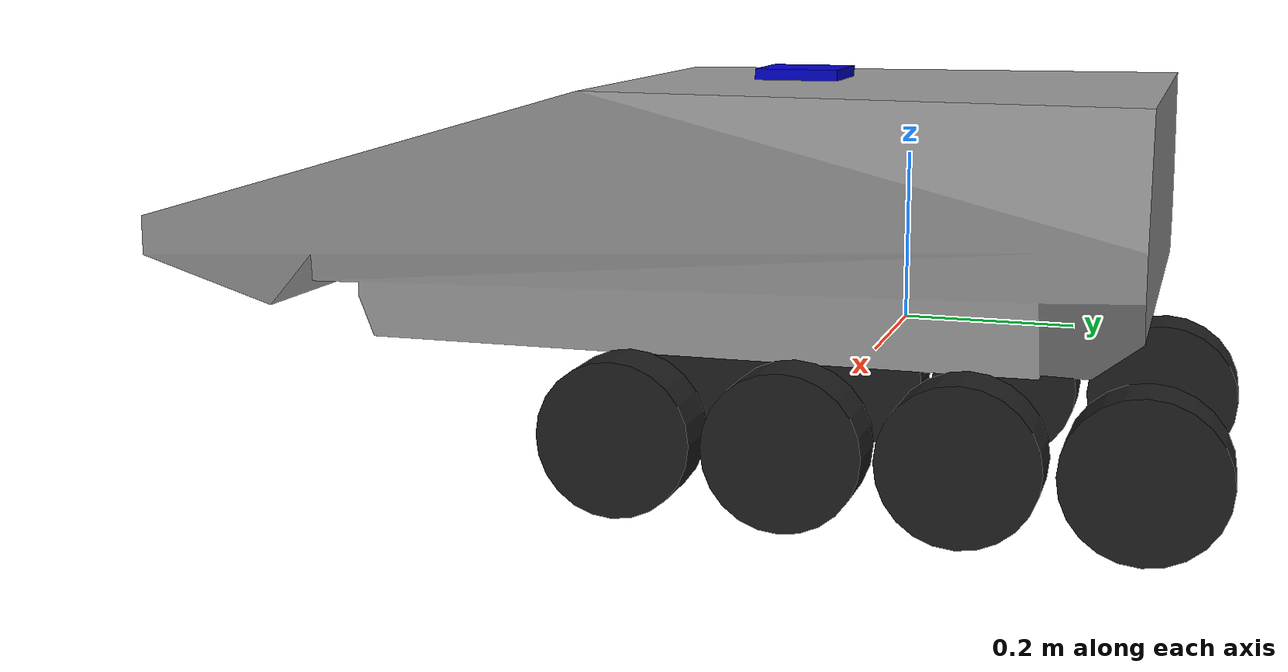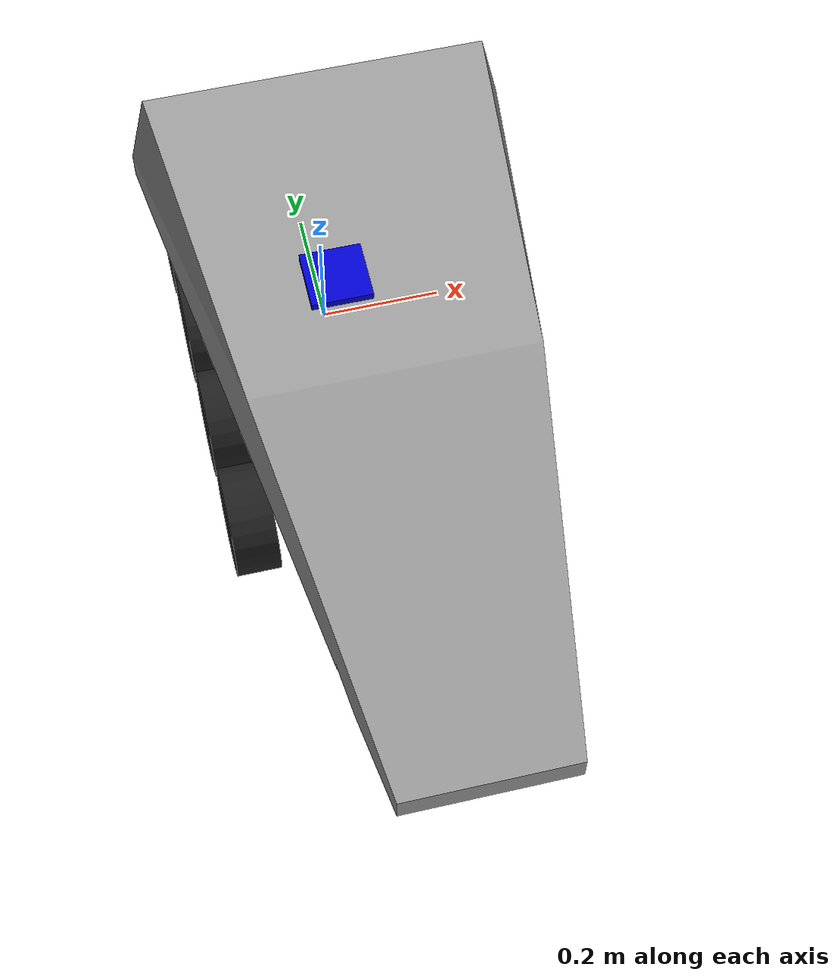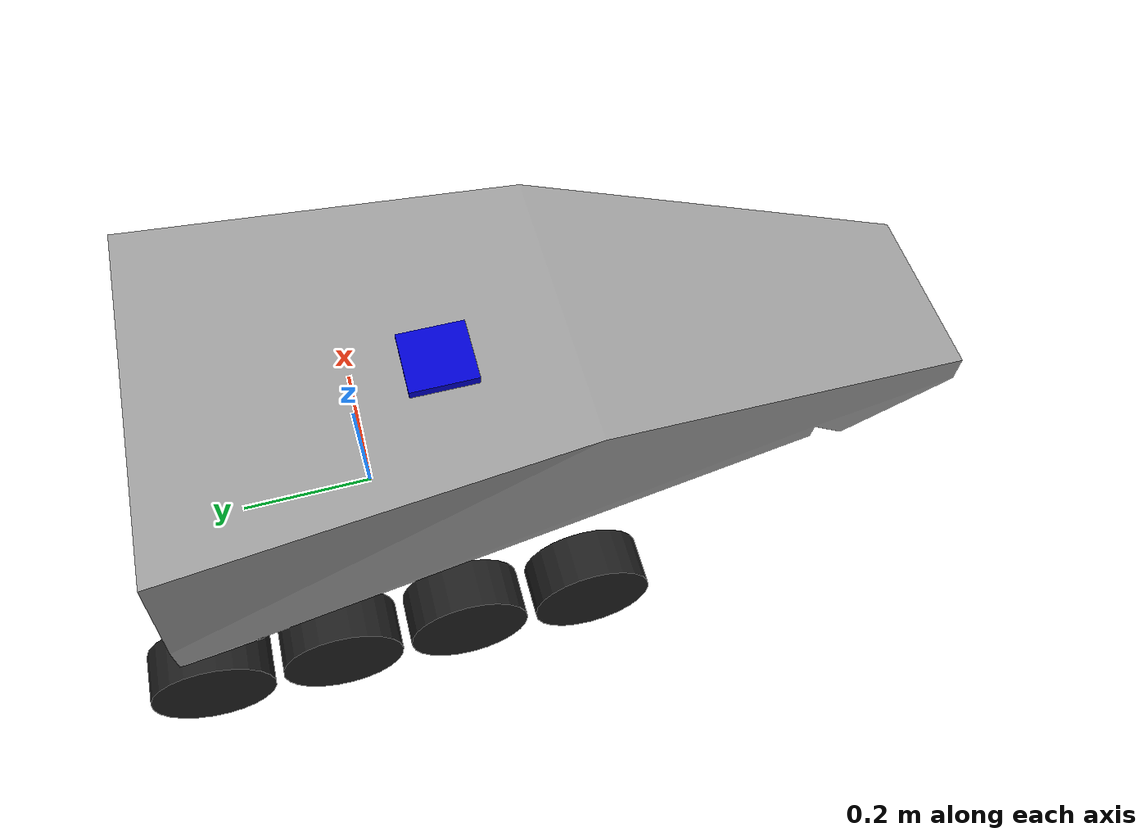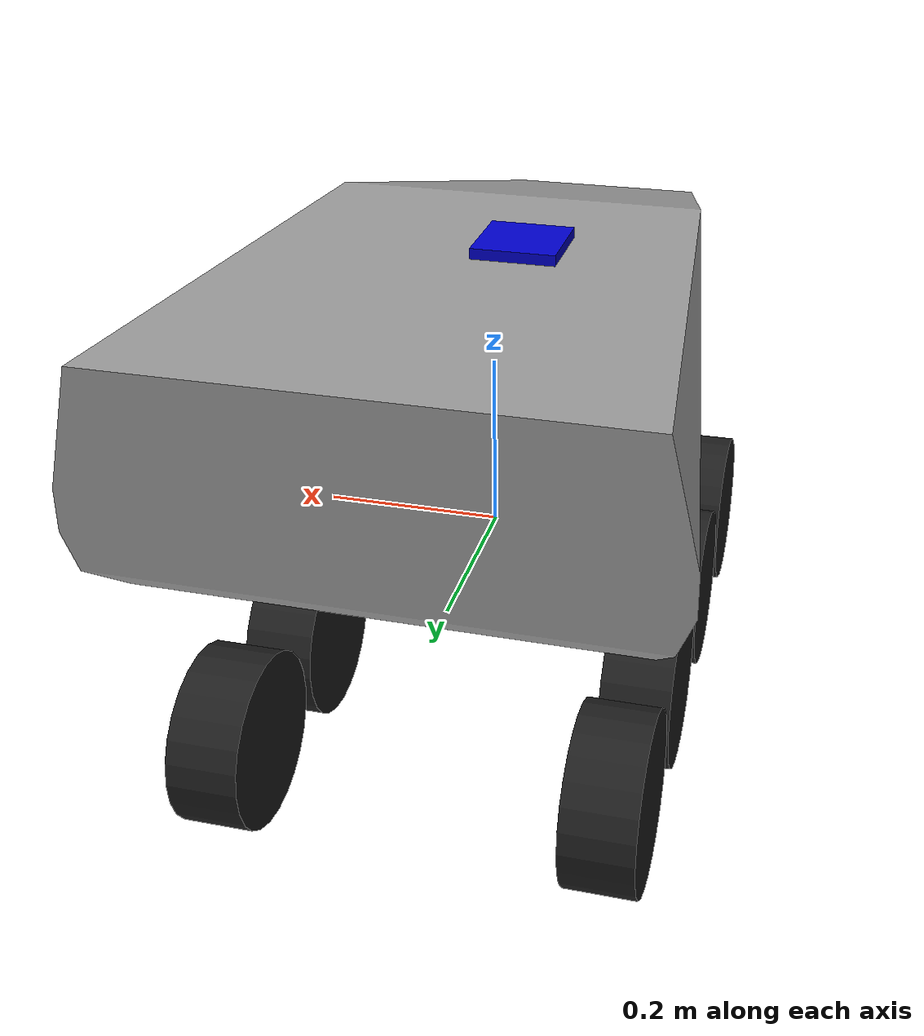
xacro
<?xml version="1.0"?>
<robot name="bot" xmlns:xacro="http://www.ros.org/wiki/xacro">

<xacro:property name="wheelRadius" value="0.0932"/>
<xacro:property name="wheelLength" value="0.07575"/>
<xacro:property name="leftWheel" value="left_wheel"/>
<xacro:property name="rightWheel" value="right_wheel"/>

<xacro:macro name="wheel" params="side num reflect">
  <link name="${side}_${num}">
    <visual>
      <geometry>
        <cylinder length="${wheelLength}" radius="${wheelRadius}"/>
        <origin rpy="0 ${3.14592/2} 0" xyz="${0.2 * reflect} ${0.3 - (0.2 * num)} -0.12"/>
      </geometry>
      <material name="Black"/>
    </visual>
    <collision>
      <geometry>
         <cylinder length="${wheelLength}" radius="${wheelRadius}"/>
         <origin rpy="0 ${3.14592/2} 0" xyz="${0.2 * reflect} ${0.3 - (0.2 * num)} -0.12"/>
      </geometry>
    </collision>
    <inertial>
      <mass value = "1" />
      <inertia ixx="0.00143" ixy="0.0" ixz="0.0" iyy="0.00143" iyz="0.0" izz="0.00125"/>
    </inertial>

</link>

  <joint name="${side}_${num}_joint" type="continuous">
    <axis xyz="0 0 1" />
    <limit effort="10000.0" velocity="3"/>
    <parent link="base_link"/>
    <child link="${side}_${num}"/>
    <origin rpy="0 ${3.14592/2} 0" xyz="${0.2 * reflect} ${0.3 - (0.2 * num)} -0.12"/>
  </joint>

  <gazebo reference="${side}_${num}">
    <mu1 value="100.0"/>
    <mu2 value="50.0"/>
    <kp value="10000000.0" />
    <kd value="1.0" />
    <material>Gazebo/Red</material>
  </gazebo>
</xacro:macro>

<xacro:macro name="transmissions" params="num side">

    <transmission name="${side}_${num}_trans">
      <type>transmission_interface/SimpleTransmission</type>
      <actuator name="${side}_${num}_motor">
        <mechanicalReduction>1</mechanicalReduction>
        <hardwareInterface>hardware_interface/VelocityJointInterface</hardwareInterface>
      </actuator>
      <joint name="${side}_${num}_joint">
        <hardwareInterface>hardware_interface/VelocityJointInterface</hardwareInterface>
      </joint>
    </transmission>
</xacro:macro>
<!-- ============================= SENSORS ========================================= -->
<link name="hokuyo_link">
        <visual>
			<origin rpy="0 0 0" xyz="0 0 0"/>
            <geometry>
                <box size="0.1 0.1 0.1"/>
            </geometry>
			<material name="blue"/>
        </visual>
    </link>

	<joint name="hokuyo_joint" type="fixed">
		<parent link="base_link"/>
		<child link="hokuyo_link"/>
		<origin xyz="0.0 -0.13 0.25" rpy="0 0 -1.572" />
	</joint>

	<gazebo reference="hokuyo_link">
    <material>Gazebo/White</material>
	    <sensor name="head_hokuyo_sensor" type="ray">
	      <pose>0.05 0 0 0 0 0</pose>
	      <visualize>true</visualize>
	      <update_rate>40</update_rate>
	      <ray>
	        <scan>
	          <horizontal>
	            <samples>720</samples>
	            <resolution>1</resolution>
	            <min_angle>-1.570796</min_angle>
	            <max_angle>1.570796</max_angle>
	          </horizontal>
	        </scan>
	        <range>
	          <min>0.10</min>
	          <max>10.0</max>
	          <resolution>0.001</resolution>
	        </range>
	      </ray>
	      <plugin filename="libgazebo_ros_laser.so" name="gazebo_ros_head_hokuyo_controller">
	        <topicName>/scan</topicName>
	        <frameName>hokuyo_link</frameName>
	      </plugin>
	    </sensor>
  	</gazebo>

  <material name="blue">
    <color rgba="0 0 0.8 1"/>
</material>

  <material name="white">
    <color rgba="1 1 1 1"/>
  </material>

 <material name="black">
    <color rgba="0 0 0 1"/>
  </material>

  <link name="base_link">
    <visual>
      <geometry>
        <mesh filename="package://bot_description/meshes/carfullblended.dae"/>
      </geometry>
      <origin rpy="0 0 0" xyz="0.044112 -0.311197 -0.038199"/>
      <material name="grey"/>
    </visual>
    <collision>
      <geometry>
        <mesh filename="package://bot_description/meshes/carfullblended.dae"/>
      </geometry>
      <origin rpy="0 0 0" xyz="0 0 0"/>
    </collision>

  </link>

  <link name="dummy_link">
    <inertial>
      <mass value = "10" />
      <inertia ixx="0.05666" ixy="0.0" ixz="0.0" iyy="0.00666" iyz="0.0" izz="0.05666"/>
    </inertial>
  </link>

  <joint name="dummy_joint" type="fixed">
    <parent link="base_link"/>
    <child link="dummy_link"/>
    <origin rpy="0 0 0" xyz="0 0 0"/>
  </joint>

<xacro:wheel side="left_wheel" num="0" reflect="-1"/>
<xacro:wheel side="left_wheel" num="1" reflect="-1"/>
<xacro:wheel side="left_wheel" num="2" reflect="-1"/>
<xacro:wheel side="left_wheel" num="3" reflect="-1"/>
<xacro:wheel side="right_wheel" num="0" reflect="1"/>
<xacro:wheel side="right_wheel" num="1" reflect="1"/>
<xacro:wheel side="right_wheel" num="2" reflect="1"/>
<xacro:wheel side="right_wheel" num="3" reflect="1"/>

  <gazebo>
  <plugin name="gazebo_ros_control" filename="libgazebo_ros_control.so">
    <robotNamespace>/bot</robotNamespace>
  </plugin>

  <plugin name="p3d_base_controller" filename="libgazebo_ros_p3d.so">
    <alwaysOn>true</alwaysOn>
    <updateRate>50.0</updateRate>
    <bodyName>base_link</bodyName>
    <topicName>/odom</topicName>
    <gaussianNoise>0.01</gaussianNoise>
    <frameName>world</frameName>
    <xyzOffsets>0 0 0</xyzOffsets>
    <rpyOffsets>0 0 0</rpyOffsets>
  </plugin>

  </gazebo>

<xacro:transmissions side="left_wheel" num="0"/>
<xacro:transmissions side="left_wheel" num="1"/>
<xacro:transmissions side="left_wheel" num="2"/>
<xacro:transmissions side="left_wheel" num="3"/>
<xacro:transmissions side="right_wheel" num="0"/>
<xacro:transmissions side="right_wheel" num="1"/>
<xacro:transmissions side="right_wheel" num="2"/>
<xacro:transmissions side="right_wheel" num="3"/>

</robot>
